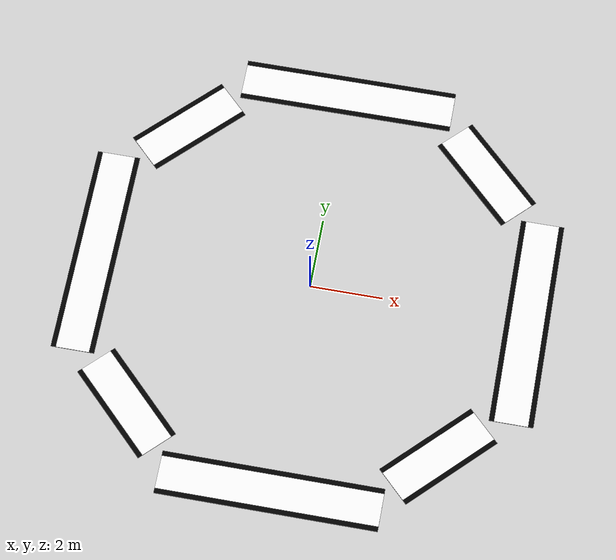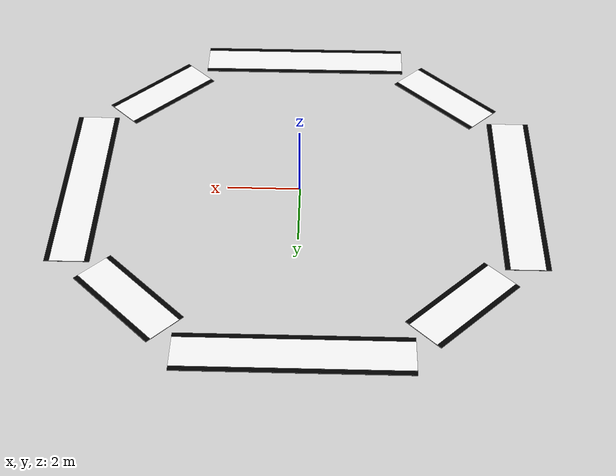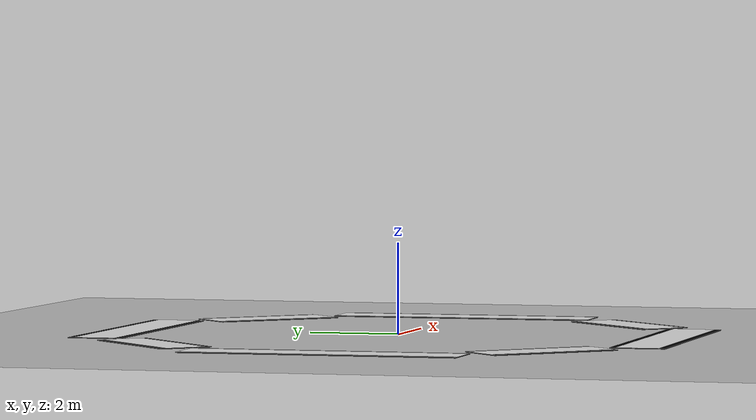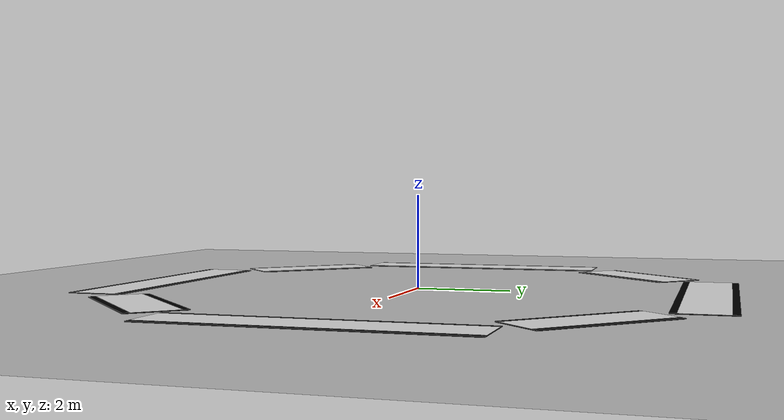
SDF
<?xml version="1.0"?>
<sdf version="1.10">
  <model name="Raceway_1_simple">
    <static>true</static>
    <self_collide>false</self_collide>

    <link name="track_link">
      <collision name="ground_collision">
        <pose>0 0 0 0 0 0</pose>
        <geometry>
          <plane>
            <normal>0 0 1</normal>
            <size>60 60</size>
          </plane>
        </geometry>
      </collision>

      <visual name="ground_visual">
        <pose>0 0 -0.001 0 0 0</pose>
        <geometry>
          <plane>
            <normal>0 0 1</normal>
            <size>60 60</size>
          </plane>
        </geometry>
        <material>
          <ambient>0.84 0.84 0.84 1</ambient>
          <diffuse>0.84 0.84 0.84 1</diffuse>
          <specular>0.05 0.05 0.05 1</specular>
        </material>
      </visual>

      <collision name='road_collision_1'>
        <pose>0.000 6.000 0.015 0 0 0.000000000</pose>
        <geometry>
          <box>
            <size>6.000 1.200 0.03</size>
          </box>
        </geometry>
      </collision>

      <visual name='road_border_1'>
        <pose>0.000 6.000 0.010 0 0 0.000000000</pose>
        <geometry>
          <box>
            <size>6.000 1.200 0.02</size>
          </box>
        </geometry>
        <material>
          <ambient>0 0 0 1</ambient>
          <diffuse>0 0 0 1</diffuse>
          <specular>0 0 0 1</specular>
        </material>
      </visual>

      <visual name='road_lane_1'>
        <pose>0.000 6.000 0.021 0 0 0.000000000</pose>
        <geometry>
          <box>
            <size>6.000 0.920 0.002</size>
          </box>
        </geometry>
        <material>
          <ambient>1 1 1 1</ambient>
          <diffuse>1 1 1 1</diffuse>
          <specular>0.1 0.1 0.1 1</specular>
        </material>
      </visual>

      <collision name='road_collision_2'>
        <pose>4.240 4.240 0.015 0 0 -0.785398163</pose>
        <geometry>
          <box>
            <size>3.000 1.200 0.03</size>
          </box>
        </geometry>
      </collision>

      <visual name='road_border_2'>
        <pose>4.240 4.240 0.010 0 0 -0.785398163</pose>
        <geometry>
          <box>
            <size>3.000 1.200 0.02</size>
          </box>
        </geometry>
        <material>
          <ambient>0 0 0 1</ambient>
          <diffuse>0 0 0 1</diffuse>
          <specular>0 0 0 1</specular>
        </material>
      </visual>

      <visual name='road_lane_2'>
        <pose>4.240 4.240 0.021 0 0 -0.785398163</pose>
        <geometry>
          <box>
            <size>3.000 0.920 0.002</size>
          </box>
        </geometry>
        <material>
          <ambient>1 1 1 1</ambient>
          <diffuse>1 1 1 1</diffuse>
          <specular>0.1 0.1 0.1 1</specular>
        </material>
      </visual>

      <collision name='road_collision_3'>
        <pose>6.000 0.000 0.015 0 0 1.570796327</pose>
        <geometry>
          <box>
            <size>6.000 1.200 0.03</size>
          </box>
        </geometry>
      </collision>

      <visual name='road_border_3'>
        <pose>6.000 0.000 0.010 0 0 1.570796327</pose>
        <geometry>
          <box>
            <size>6.000 1.200 0.02</size>
          </box>
        </geometry>
        <material>
          <ambient>0 0 0 1</ambient>
          <diffuse>0 0 0 1</diffuse>
          <specular>0 0 0 1</specular>
        </material>
      </visual>

      <visual name='road_lane_3'>
        <pose>6.000 0.000 0.021 0 0 1.570796327</pose>
        <geometry>
          <box>
            <size>6.000 0.920 0.002</size>
          </box>
        </geometry>
        <material>
          <ambient>1 1 1 1</ambient>
          <diffuse>1 1 1 1</diffuse>
          <specular>0.1 0.1 0.1 1</specular>
        </material>
      </visual>

      <collision name='road_collision_4'>
        <pose>4.240 -4.240 0.015 0 0 0.785398163</pose>
        <geometry>
          <box>
            <size>3.000 1.200 0.03</size>
          </box>
        </geometry>
      </collision>

      <visual name='road_border_4'>
        <pose>4.240 -4.240 0.010 0 0 0.785398163</pose>
        <geometry>
          <box>
            <size>3.000 1.200 0.02</size>
          </box>
        </geometry>
        <material>
          <ambient>0 0 0 1</ambient>
          <diffuse>0 0 0 1</diffuse>
          <specular>0 0 0 1</specular>
        </material>
      </visual>

      <visual name='road_lane_4'>
        <pose>4.240 -4.240 0.021 0 0 0.785398163</pose>
        <geometry>
          <box>
            <size>3.000 0.920 0.002</size>
          </box>
        </geometry>
        <material>
          <ambient>1 1 1 1</ambient>
          <diffuse>1 1 1 1</diffuse>
          <specular>0.1 0.1 0.1 1</specular>
        </material>
      </visual>

      <collision name='road_collision_5'>
        <pose>0.000 -6.000 0.015 0 0 0.000000000</pose>
        <geometry>
          <box>
            <size>6.000 1.200 0.03</size>
          </box>
        </geometry>
      </collision>

      <visual name='road_border_5'>
        <pose>0.000 -6.000 0.010 0 0 0.000000000</pose>
        <geometry>
          <box>
            <size>6.000 1.200 0.02</size>
          </box>
        </geometry>
        <material>
          <ambient>0 0 0 1</ambient>
          <diffuse>0 0 0 1</diffuse>
          <specular>0 0 0 1</specular>
        </material>
      </visual>

      <visual name='road_lane_5'>
        <pose>0.000 -6.000 0.021 0 0 0.000000000</pose>
        <geometry>
          <box>
            <size>6.000 0.920 0.002</size>
          </box>
        </geometry>
        <material>
          <ambient>1 1 1 1</ambient>
          <diffuse>1 1 1 1</diffuse>
          <specular>0.1 0.1 0.1 1</specular>
        </material>
      </visual>

      <collision name='road_collision_6'>
        <pose>-4.240 -4.240 0.015 0 0 -0.785398163</pose>
        <geometry>
          <box>
            <size>3.000 1.200 0.03</size>
          </box>
        </geometry>
      </collision>

      <visual name='road_border_6'>
        <pose>-4.240 -4.240 0.010 0 0 -0.785398163</pose>
        <geometry>
          <box>
            <size>3.000 1.200 0.02</size>
          </box>
        </geometry>
        <material>
          <ambient>0 0 0 1</ambient>
          <diffuse>0 0 0 1</diffuse>
          <specular>0 0 0 1</specular>
        </material>
      </visual>

      <visual name='road_lane_6'>
        <pose>-4.240 -4.240 0.021 0 0 -0.785398163</pose>
        <geometry>
          <box>
            <size>3.000 0.920 0.002</size>
          </box>
        </geometry>
        <material>
          <ambient>1 1 1 1</ambient>
          <diffuse>1 1 1 1</diffuse>
          <specular>0.1 0.1 0.1 1</specular>
        </material>
      </visual>

      <collision name='road_collision_7'>
        <pose>-6.000 0.000 0.015 0 0 1.570796327</pose>
        <geometry>
          <box>
            <size>6.000 1.200 0.03</size>
          </box>
        </geometry>
      </collision>

      <visual name='road_border_7'>
        <pose>-6.000 0.000 0.010 0 0 1.570796327</pose>
        <geometry>
          <box>
            <size>6.000 1.200 0.02</size>
          </box>
        </geometry>
        <material>
          <ambient>0 0 0 1</ambient>
          <diffuse>0 0 0 1</diffuse>
          <specular>0 0 0 1</specular>
        </material>
      </visual>

      <visual name='road_lane_7'>
        <pose>-6.000 0.000 0.021 0 0 1.570796327</pose>
        <geometry>
          <box>
            <size>6.000 0.920 0.002</size>
          </box>
        </geometry>
        <material>
          <ambient>1 1 1 1</ambient>
          <diffuse>1 1 1 1</diffuse>
          <specular>0.1 0.1 0.1 1</specular>
        </material>
      </visual>

      <collision name='road_collision_8'>
        <pose>-4.240 4.240 0.015 0 0 0.785398163</pose>
        <geometry>
          <box>
            <size>3.000 1.200 0.03</size>
          </box>
        </geometry>
      </collision>

      <visual name='road_border_8'>
        <pose>-4.240 4.240 0.010 0 0 0.785398163</pose>
        <geometry>
          <box>
            <size>3.000 1.200 0.02</size>
          </box>
        </geometry>
        <material>
          <ambient>0 0 0 1</ambient>
          <diffuse>0 0 0 1</diffuse>
          <specular>0 0 0 1</specular>
        </material>
      </visual>

      <visual name='road_lane_8'>
        <pose>-4.240 4.240 0.021 0 0 0.785398163</pose>
        <geometry>
          <box>
            <size>3.000 0.920 0.002</size>
          </box>
        </geometry>
        <material>
          <ambient>1 1 1 1</ambient>
          <diffuse>1 1 1 1</diffuse>
          <specular>0.1 0.1 0.1 1</specular>
        </material>
      </visual>

    </link>
  </model>
</sdf>
